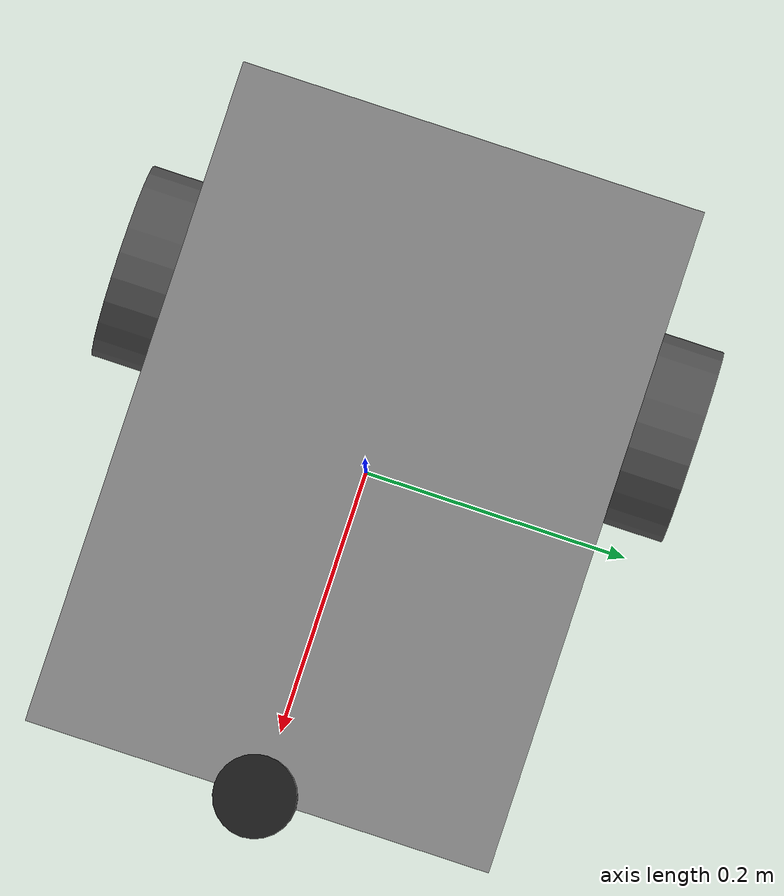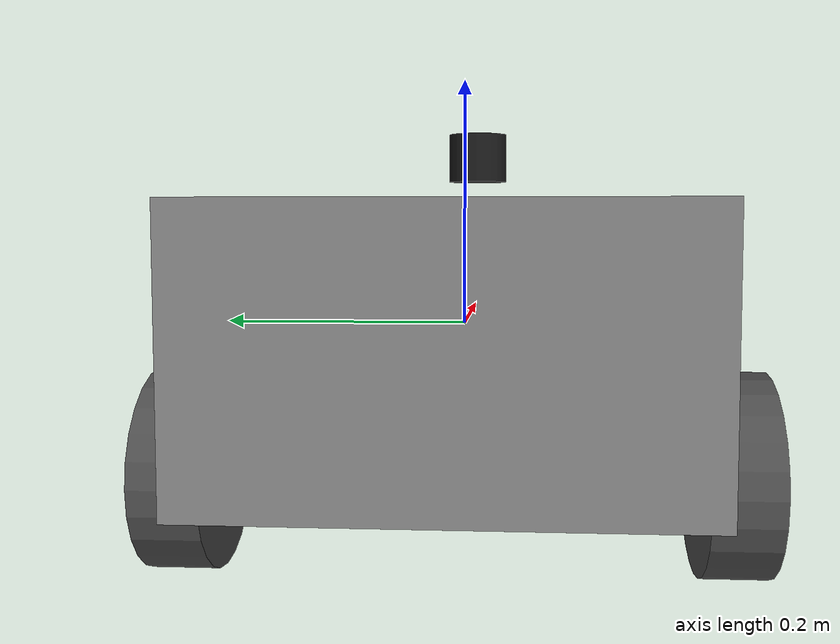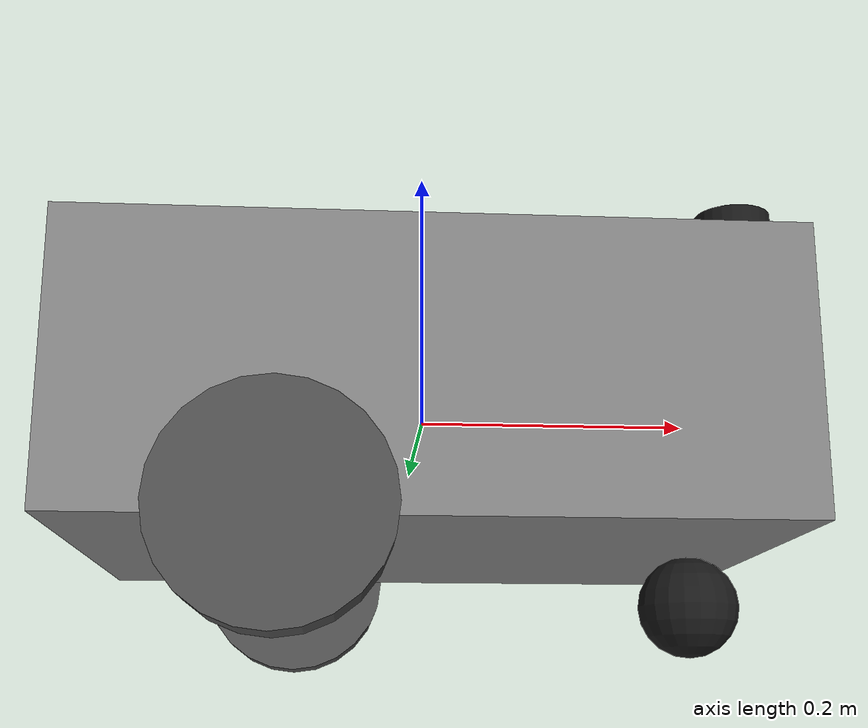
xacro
<?xml version="1.0"?>
<robot xmlns:xacro="http://www.ros.org/wiki/xacro" name="tracked_robot">

  <!-- 基础连杆：底盘 -->
  <link name="base_link">
    <visual>
      <geometry>
        <box size="0.5 0.35 0.2"/>
      </geometry>
      <material name="gray">
        <color rgba="0.5 0.5 0.5 1.0"/>
      </material>
    </visual>
    <collision>
      <geometry>
        <box size="0.5 0.35 0.2"/>
      </geometry>
    </collision>
    <inertial>
      <mass value="10.0"/>
      <inertia ixx="0.135417" ixy="0.0" ixz="0.0"
               iyy="0.241667" iyz="0.0"
               izz="0.310417"/>
    </inertial>
  </link>

  <!-- MID360 安装支架连杆 -->
  <link name="livox_link">
    <visual>
      <geometry>
        <cylinder radius="0.03" length="0.05"/>
      </geometry>
      <material name="black">
        <color rgba="0.1 0.1 0.1 1.0"/>
      </material>
    </visual>
    <!-- 注意：这里去掉了 collision，因为 Livox 插件的射线原点与 link 原点重合，
         若保留 collision，所有射线会首先与自身圆柱发生碰撞，导致点云为空。 -->
    <inertial>
      <mass value="0.1"/>
      <inertia ixx="0.000043" ixy="0.0" ixz="0.0"
               iyy="0.000043" iyz="0.0"
               izz="0.000045"/>
    </inertial>
  </link>

  <!-- IMU 连杆 -->
  <link name="imu_link">
    <inertial>
      <mass value="0.05"/>
      <inertia ixx="0.000001" ixy="0.0" ixz="0.0"
               iyy="0.000001" iyz="0.0"
               izz="0.000001"/>
    </inertial>
  </link>

  <!-- 关节定义 -->
  <joint name="livox_joint" type="fixed">
    <parent link="base_link"/>
    <child link="livox_link"/>
    <origin xyz="0.25 0.0 0.15" rpy="0 0 0"/>
  </joint>

  <joint name="imu_joint" type="fixed">
    <parent link="base_link"/>
    <child link="imu_link"/>
    <origin xyz="0.0 0.0 0.05" rpy="0 0 0"/>
  </joint>

  <!-- Gazebo 插件：MID360 LiDAR -->
  <gazebo reference="livox_link">
    <sensor type="ray" name="mid360_sensor">
      <pose>0 0 0 0 0 0</pose>
      <visualize>false</visualize>
      <always_on>true</always_on>
      <update_rate>10</update_rate>
      <plugin name="livox_laser_simulation" filename="liblivox_laser_simulation.so">
          <ros_topic>/livox/lidar</ros_topic>
        <frameName>livox_link</frameName>
        <csv_file_name>mid360-real-centr.csv</csv_file_name>
        <samples>18000</samples>
        <downsample>1</downsample>
        <publish_pointcloud_type>1</publish_pointcloud_type>
        <visualize>false</visualize>
        <debug>false</debug>
        <ray>
          <scan>
            <horizontal>
              <samples>100</samples>
              <resolution>1</resolution>
              <min_angle>-3.14159</min_angle>
              <max_angle>3.14159</max_angle>
            </horizontal>
            <vertical>
              <samples>50</samples>
              <resolution>1</resolution>
              <min_angle>-0.785</min_angle>
              <max_angle>0.785</max_angle>
            </vertical>
          </scan>
          <range>
            <min>0.1</min>
            <max>40.0</max>
            <resolution>0.01</resolution>
          </range>
        </ray>
      </plugin>
    </sensor>
  </gazebo>

  <!-- Gazebo 插件：IMU -->
  <gazebo reference="imu_link">
  <sensor type="imu" name="imu_sensor">
    <plugin name="imu_plugin" filename="libgazebo_ros_imu_sensor.so">
      <topicName>/livox/imu</topicName>
      <frameName>imu_link</frameName>
      <updateRateHZ>100</updateRateHZ>
    </plugin>
    <always_on>true</always_on>
    <update_rate>100</update_rate>
    <visualize>true</visualize>
    <imu>
      <angular_velocity>
        <x><noise type="gaussian"><mean>0.0</mean><stddev>0.01</stddev></noise></x>
        <y><noise type="gaussian"><mean>0.0</mean><stddev>0.01</stddev></noise></y>
        <z><noise type="gaussian"><mean>0.0</mean><stddev>0.01</stddev></noise></z>
      </angular_velocity>
      <linear_acceleration>
        <x><noise type="gaussian"><mean>0.0</mean><stddev>0.01</stddev></noise></x>
        <y><noise type="gaussian"><mean>0.0</mean><stddev>0.01</stddev></noise></y>
        <z><noise type="gaussian"><mean>0.0</mean><stddev>0.01</stddev></noise></z>
      </linear_acceleration>
    </imu>
  </sensor>
</gazebo>

  <!-- Gazebo 差速驱动插件（履带近似） -->
   <gazebo>
    <plugin name="diff_drive_controller" filename="libgazebo_ros_diff_drive.so">
      <commandTopic>cmd_vel</commandTopic>
      <odometryTopic>odom_topic</odometryTopic>
      <robotBaseFrame>base_link</robotBaseFrame>

      <leftJoint>left_track_joint</leftJoint>
      <rightJoint>right_track_joint</rightJoint>
      <wheelSeparation>0.35</wheelSeparation>
      <wheelDiameter>0.15</wheelDiameter>

      <maxWheelTorque>10</maxWheelTorque>
      <maxWheelAcceleration>2.0</maxWheelAcceleration>
      <odometrySource>1</odometrySource>

      <publishOdomTF>false</publishOdomTF>
      <publishWheelTF>false</publishWheelTF>
      <updateRate>50.0</updateRate>

      <!--  legacyMode 在 Noetic 中设为 false -->
      <legacyMode>false</legacyMode>
    </plugin>
  </gazebo>

  <!-- 履带简化模型（左右驱动轮） -->
  <link name="left_track_link">
    <visual>
      <geometry>
        <cylinder radius="0.075" length="0.05"/>
      </geometry>
      <material name="dark_gray">
        <color rgba="0.3 0.3 0.3 1.0"/>
      </material>
    </visual>
    <collision>
      <geometry>
        <cylinder radius="0.075" length="0.05"/>
      </geometry>
    </collision>
    <inertial>
      <mass value="0.5"/>
      <inertia ixx="0.000807" ixy="0.0" ixz="0.0"
               iyy="0.000807" iyz="0.0"
               izz="0.001406"/>
    </inertial>
  </link>

  <link name="right_track_link">
    <visual>
      <geometry>
        <cylinder radius="0.075" length="0.05"/>
      </geometry>
      <material name="dark_gray">
        <color rgba="0.3 0.3 0.3 1.0"/>
      </material>
    </visual>
    <collision>
      <geometry>
        <cylinder radius="0.075" length="0.05"/>
      </geometry>
    </collision>
    <inertial>
      <mass value="0.5"/>
      <inertia ixx="0.000807" ixy="0.0" ixz="0.0"
               iyy="0.000807" iyz="0.0"
               izz="0.001406"/>
    </inertial>
  </link>

  <joint name="left_track_joint" type="continuous">
    <parent link="base_link"/>
    <child link="left_track_link"/>
    <origin xyz="-0.1 0.2 -0.1" rpy="-1.5708 0 0"/>
    <axis xyz="0 0 1"/>
  </joint>

  <joint name="right_track_joint" type="continuous">
    <parent link="base_link"/>
    <child link="right_track_link"/>
    <origin xyz="-0.1 -0.2 -0.10" rpy="-1.5708 0 0"/>
    <axis xyz="0 0 1"/>
  </joint>

  <!-- 惰轮（支撑轮） -->
  <link name="caster_wheel_h">
    <visual>
      <geometry>
        <sphere radius="0.0375"/>
      </geometry>
      <material name="black">
        <color rgba="0.1 0.1 0.1 1.0"/>
      </material>
    </visual>
    <collision>
      <geometry>
        <sphere radius="0.0375"/>
      </geometry>
    </collision>
    <inertial>
      <mass value="0.5"/>
      <inertia ixx="0.0001" ixy="0.0" ixz="0.0"
               iyy="0.0001" iyz="0.0"
               izz="0.0001"/>
    </inertial>
  </link>

  <joint name="caster_joint_h" type="fixed">
    <parent link="base_link"/>
    <child link="caster_wheel_h"/>
    <origin xyz="0.2 0 -0.1375" rpy="0 0 0"/>
  </joint>

  <gazebo reference="caster_wheel_h">
    <mu1>0.0</mu1>    <mu2>0.0</mu2>
    <kp>1000000.0</kp>
    <kd>100.0</kd>
    <minDepth>0.001</minDepth>
    <maxVel>0.01</maxVel>
  </gazebo>

<gazebo reference="base_link">
  <material>Gazebo/Red</material>
</gazebo>
<gazebo reference="left_track_link">
  <material>Gazebo/Blue</material>
</gazebo>
<gazebo reference="right_track_link">
  <material>Gazebo/Black</material>
</gazebo>
</robot>
